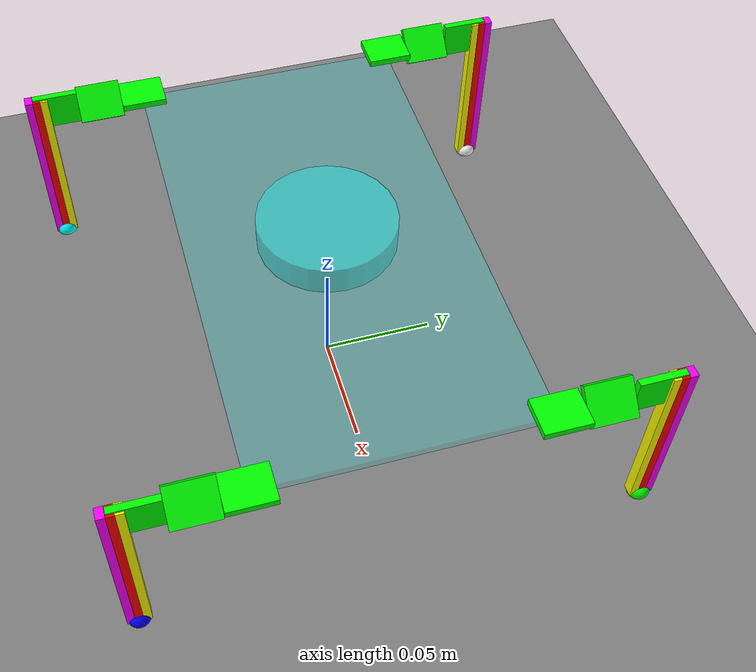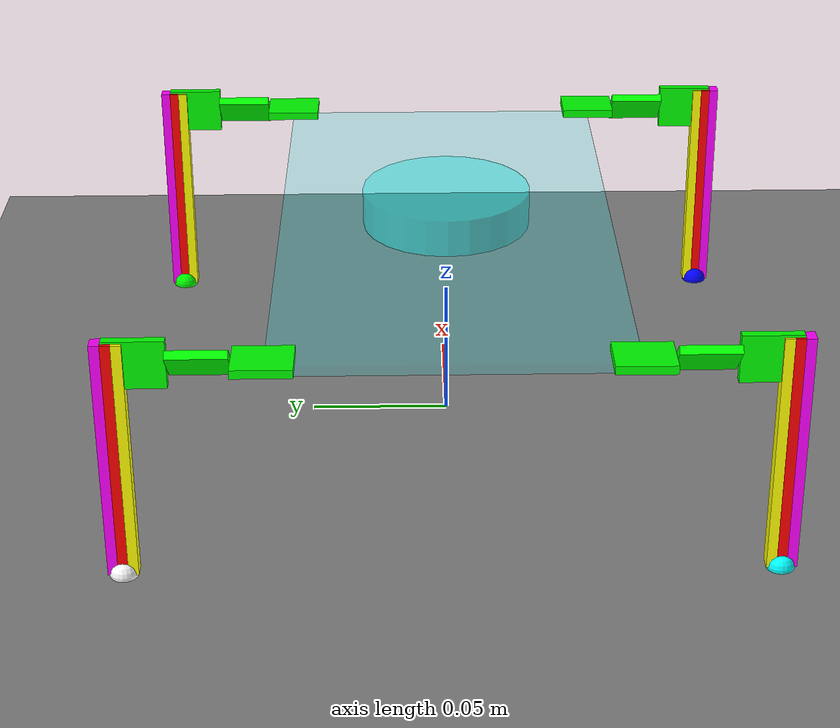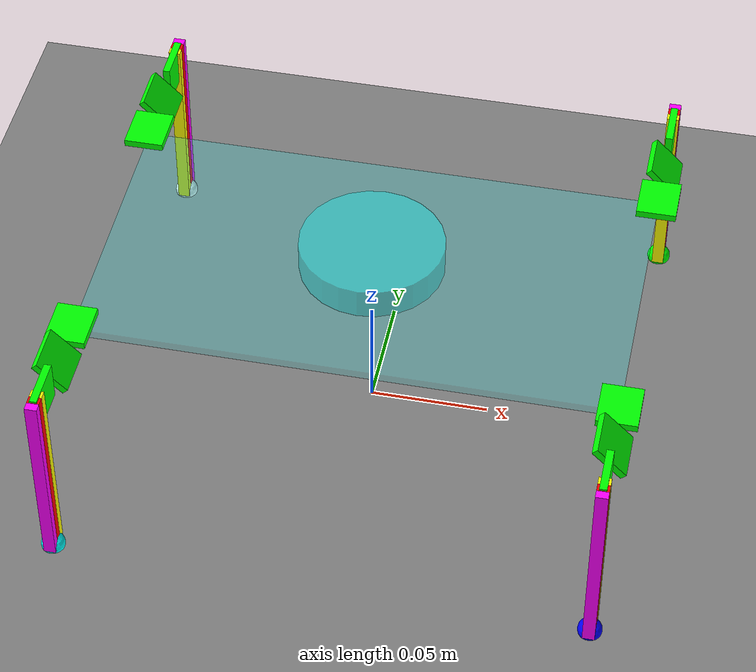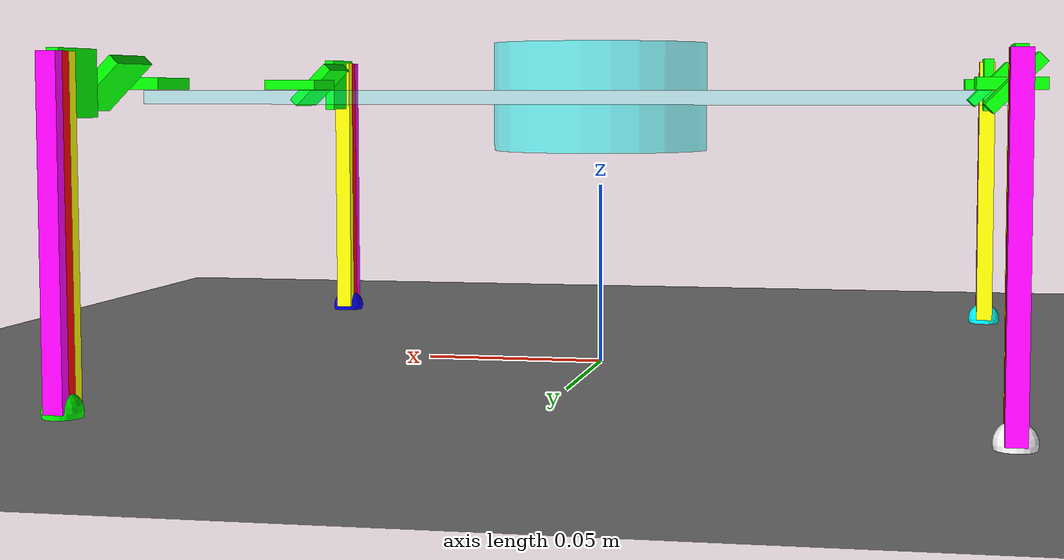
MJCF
<!-- friction mac dinh: friction="0.6 0.002 0.002"-->
	<mujoco>
	<option gravity="0 0 -25" timestep="0.001" iterations="150"/>
	<asset>
		<material name="floor" texture="check1" texrepeat="2 2" texuniform="true"/>
		<texture name="check1" builtin="checker" type="2d" width="256" height="256" rgb1="1 1 1" rgb2="0 0 0"/>

		<material name="object" texture="check2" texrepeat="5 5" texuniform="true"/>
		<texture name="check2" builtin="checker" type="2d" width="256" height="256" rgb1="0 0 1" rgb2="0 1 0"/>
	</asset>
	<worldbody>
		<light diffuse=".5 .5 .5" pos="0 0 12" dir="0 0 -1"/>
		<geom name="floor" size="25 25 .05" type="plane" material="floor" condim="3" friction="0.6 0.002 0.002"/>
<!--Than-->
<body pos="0 0 .075">
			<joint type="free"/>
			<geom type="box" mass="0.016" contype="0" conaffinity="0" rgba="0 1 1 .2" size="0.11 0.06 .00175"/> <!--tấm thân sandwich carbon (plate): vật liệu nhẹ (carbon + lõi balsa)-->
	<!--2 rotor-->
	<body pos="0 0 0">
	<geom type="cylinder" mass=".1" size=".03 .015" contype="0" conaffinity="0" rgba="0 1 1 .5"/> <!--cụm roto là tổng hợp của nhiều thứ liền kề, tong 0.7 [1]-->

		<body pos="0 0 0">

		</body>

</body>

	<!--Chan-->
	<!--Thanh dam xoan 1-->
	<body pos="-0.11 -0.06 0.0035">
		<!-- Uon quanh X -->
		<joint type="hinge" name = "X10" axis="-1 0 0" stiffness="1.062072" damping="2.21209" springref="0" pos="0 .01 0"/>
		<geom type="box" density="1200" size=".0083 .01 .0015" rgba="0 1 0 1"/>

		<body pos="0 -.02 0" euler=" 0 45 0">
			<!-- Uon quanh X -->
			<joint type="hinge" name = "X11" axis="-1 0 0" stiffness="1.062072" damping="2.21209" springref="0" pos="0 .01 0"/>
			<!-- Xoan quanh Y -->
			<joint type="hinge" name="Y11" axis="0 -1 0" stiffness="0.0024" damping="0.00183" springref="0" pos="0 .01 0"/>

			<geom type="box" density="1200" size=".0083 .01 .0015" rgba="0 1 0 1"/>

			<body pos="0 -.02 0" euler=" 0 45 0">
				<!-- Uon quanh X -->
				<joint type="hinge" name = "X12" axis="-1 0 0" stiffness="1.062072" damping="2.21209" springref="0" pos="0 .01 0"/>
				<!-- Xoan quanh Y -->
				<joint type="hinge" name="Y12" axis="0 -1 0" stiffness="0.0024" damping="0.00183" springref="0" pos="0 .01 0" />

				<geom type="box" density="1200" size=".0083 .01 .0015" rgba="0 1 0 1"/>
				<!--Ban chan-->

				<body pos=".035 -.0085 -0.00" euler="90 90 0">

					<geom type="box" density="1240" size=".0017 .0025 .0425" pos="-.0034 0 0" rgba="1 0 1 1" friction="0.6 0.002 0.002" solref="0.003 1.2" solimp="0.9 0.95 0.001"/>
					<geom type="box" density="1240" size=".0017 .0025 .0425" pos="0 0 0" rgba="1 0 0 1" friction="0.6 0.002 0.002" solref="0.003 1.2" solimp="0.9 0.95 0.001"/>
					<geom type="box" density="1240" size=".0017 .0025 .0425" pos=".0034 0 0" rgba="1 1 0 1" friction="0.6 0.002 0.002" solref="0.003 1.2" solimp="0.9 0.95 0.001"/>

					<!-- sensor -->
					<site name="S1" pos="0 0 0.0425" rgba="0 1 1 1"/>

				</body>

			</body>
		</body>
	</body>

	<!--Thanh dam xoan 2-->
	<body pos="0.11 0.06 0.0035" euler="0 0 180">
		<!-- Uon quanh X -->
		<joint type="hinge" name = "X20" axis="-1 0 0" stiffness="1.062072" damping="2.21209" springref="0" pos="0 .01 0"/>

		<geom type="box" density="1200" size=".0083 .01 .0015" rgba="0 1 0 1"/>

		<body pos="0 -.02 0" euler=" 0 -45 0">
			<!-- Uon quanh X -->
			<joint type="hinge" name = "X21" axis="-1 0 0" stiffness="1.062072" damping="2.21209" springref="0" pos="0 .02 0"/>
			<!-- Xoan quanh Y -->
			<joint type="hinge" name = "Y21" axis="0 -1 0" stiffness="0.0024" damping="0.00183" springref="0" pos="0 .02 0" />

			<geom type="box" density="1200" size=".0083 .01 .0015" rgba="0 1 0 1"/>

			<body pos="0 -.02 0" euler=" 0 -45 0">
				<!-- Uon quanh X -->
				<joint type="hinge" name = "X22" axis="-1 0 0" stiffness="1.062072" damping="2.21209" springref="0" pos="0 .02 0"/>
				<!-- Xoan quanh Y -->
				<joint type="hinge" name = "Y22" axis="0 -1 0" stiffness="0.0024" damping="0.00183" springref="0" pos="0 .02 0" />

				<geom type="box" density="1200" size=".0083 .01 .0015" rgba="0 1 0 1"/>
				<!--Ban chan-->
				<body pos=" -.035 -.0085 -0.00" euler="90 90 0">
					<geom type="box" density="1240" size=".0017 .0025 .0425" pos="-.0034 0 0" rgba="1 0 1 1" friction="0.6 0.002 0.002" solref="0.003 1.2" solimp="0.9 0.95 0.001"/>
					<geom type="box" density="1240" size=".0017 .0025 .0425" pos="0 0 0" rgba="1 0 0 1" friction="0.6 0.002 0.002" solref="0.003 1.2" solimp="0.9 0.95 0.001"/>
					<geom type="box" density="1240" size=".0017 .0025 .0425" pos=".0034 0 0" rgba="1 1 0 1" friction="0.6 0.002 0.002" solref="0.003 1.2" solimp="0.9 0.95 0.001"/>
					<site name="S2" pos="0 0 -0.0425" rgba="0 1 0 1"/>
				</body>

			</body>
		</body>
	</body>

	<!--Thanh dam xoan 3-->
	<body pos="0.11 -0.06 0.0035">
		<!-- Uon quanh X -->
		<joint type="hinge" name = "X30" axis="-1 0 0" stiffness="1.062072" damping="2.21209" springref="0" pos="0 .02 0"/>

		<geom type="box" density="1200" size=".0083 .01 .0015" rgba="0 1 0 1"/>

		<body pos="0 -.02 0" euler=" 0 45 0">
			<!-- Uon quanh X -->
			<joint type="hinge" name = "X31" axis="-1 0 0" stiffness="1.062072" damping="2.21209" springref="0" pos="0 .02 0"/>
			<!-- Xoan quanh Y -->
			<joint type="hinge" name = "Y31" axis="0 -1 0" stiffness="0.0024" damping="0.00183" springref="0" pos="0 .02 0" />

			<geom type="box" density="1200" size=".0083 .01 .0015" rgba="0 1 0 1"/>

			<body pos="0 -.02 0" euler=" 0 45 0">
				<!-- Uon quanh X -->
				<joint type="hinge"  name = "X32" axis="-1 0 0" stiffness="1.062072" damping="2.21209" springref="0" pos="0 .02 0"/>
				<!-- Xoan quanh Y -->
				<joint type="hinge" name = "Y32" axis="0 -1 0" stiffness="0.0024" damping="0.00183" springref="0" pos="0 .02 0" />

				<geom type="box" density="1200" size=".0083 .01 .0015" rgba="0 1 0 1"/>

				<!--Ban chan-->
				<body pos=" .035 -.0085 -0.00" euler="90 90 0">
					<geom type="box" density="1240" size=".0017 .0025 .0425" pos="-.0034 0 0" rgba="1 0 1 1" friction="0.6 0.002 0.002" solref="0.003 1.2" solimp="0.9 0.95 0.001"/>
					<geom type="box" density="1240" size=".0017 .0025 .0425" pos="0 0 0"    rgba="1 0 0 1" friction="0.6 0.002 0.002" solref="0.003 1.2" solimp="0.9 0.95 0.001"/>
					<geom type="box" density="1240" size=".0017 .0025 .0425" pos=".0034 0 0" rgba="1 1 0 1" friction="0.6 0.002 0.002" solref="0.003 1.2" solimp="0.9 0.95 0.001"/>
					<site name="S3" pos="0 0 0.0425" rgba="0 0 1 1"/>
				</body>

			</body>
		</body>
	</body>

	<!--Thanh dam xoan 4-->
	<body pos="-0.11 0.06 0.0035" euler="0 0 180">
		<!-- Uon quanh X -->
		<joint type="hinge"  name = "X40" axis="-1 0 0" stiffness="1.062072" damping="2.21209" springref="0" pos="0 .02 0"/>

		<geom type="box" density="1200" size=".0083 .01 .0015" rgba="0 1 0 1"/>

		<body pos="0 -.02 0" euler=" 0 -45 0">
			<!-- Uon quanh X -->
			<joint type="hinge" name = "X41" axis="-1 0 0" stiffness="1.062072" damping="2.21209" springref="0" pos="0 .02 0"/>
			<!-- Xoan quanh Y -->
			<joint type="hinge" name = "Y41" axis="0 -1 0" stiffness="0.0024" damping="0.00183" springref="0" pos="0 .02 0" />

			<geom type="box" density="1200" size=".0083 .01 .0015" rgba="0 1 0 1"/>

			<body pos="0 -.02 0" euler=" 0 -45 0">
				<!-- Uon quanh X -->
				<joint type="hinge" name = "X42" axis="-1 0 0" stiffness="1.062072" damping="2.21209" springref="0" pos="0 .02 0"/>
				<!-- Xoan quanh Y -->
				<joint type="hinge" name = "Y42" axis="0 -1 0" stiffness="0.0024" damping="0.00183" springref="0" pos="0 .02 0" />

				<geom type="box" density="1200" size=".0083 .01 .0015" rgba="0 1 0 1"/>
				<!--Ban chan-->
				<body pos=" -.035 -.0085 -0.00" euler="90 90 0">
					<geom type="box" density="1240" size=".0017 .0025 .0425" pos="-.0034 0 0" rgba="1 0 1 1" friction="0.6 0.002 0.002" solref="0.003 1.2" solimp="0.9 0.95 0.001"/>
					<geom type="box" density="1240" size=".0017 .0025 .0425" pos="0 0 0"    rgba="1 0 0 1" friction="0.6 0.002 0.002" solref="0.003 1.2" solimp="0.9 0.95 0.001"/>
					<geom type="box" density="1240" size=".0017 .0025 .0425" pos=".0034 0 0" rgba="1 1 0 1" friction="0.6 0.002 0.002" solref="0.003 1.2" solimp="0.9 0.95 0.001"/>
					<site name="S4" pos="0 0 -0.0425" rgba="1 1 1 1"/>
				</body>

			</body>
		</body>
	</body>

</body>

	</worldbody>

	<sensor>
		<force name="Site1" site="S1"/>
		<force name="Site2" site="S2"/>
		<force name="Site3" site="S3"/>
		<force name="Site4" site="S4"/>
	</sensor>

</mujoco>
